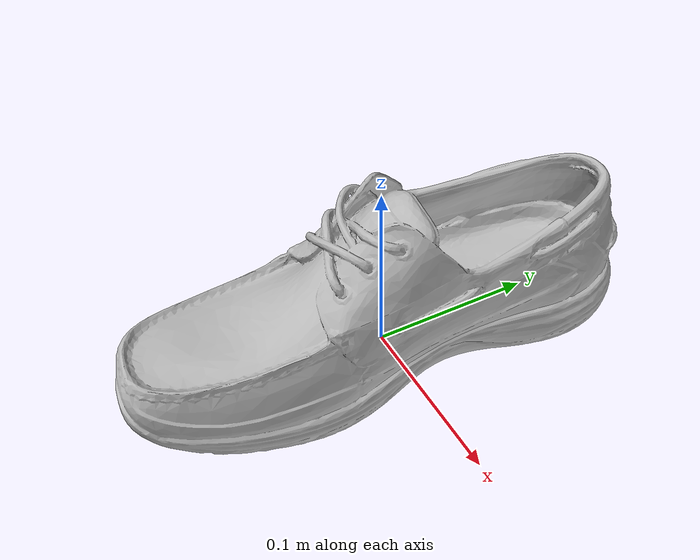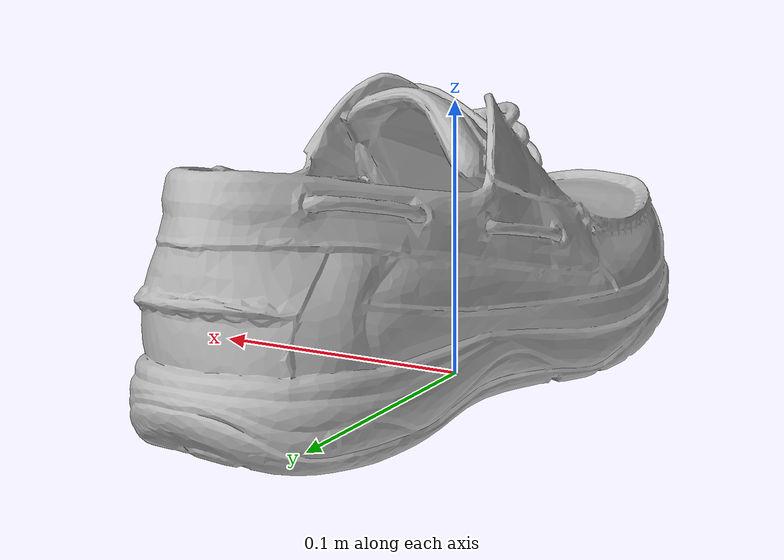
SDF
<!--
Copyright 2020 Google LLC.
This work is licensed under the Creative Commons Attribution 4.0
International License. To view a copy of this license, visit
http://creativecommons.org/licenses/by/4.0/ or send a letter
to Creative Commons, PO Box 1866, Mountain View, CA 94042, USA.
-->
<?xml version="1.0" ?>
<sdf version="1.6">
    <model name="Mens_ASV_Billfish_Boat_Shoe_in_Dark_Brown_Leather_zdHVHXueI3w">
        <link name="link_0">
            <visual name="visual">
                <geometry>
                    <mesh>
                        <uri>meshes/model.obj</uri>
                    </mesh>
                </geometry>
            </visual>
            <collision name="collision_0">
                <geometry>
                    <mesh>
                        <uri>meshes/model.obj</uri>
                    </mesh>
                </geometry>
            </collision>
        </link>
    </model>
</sdf>
